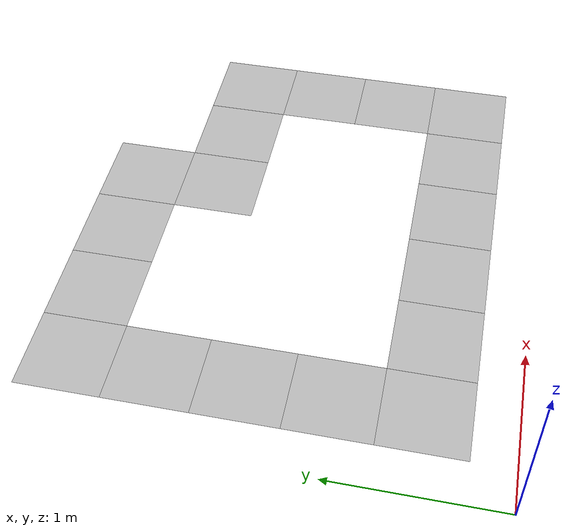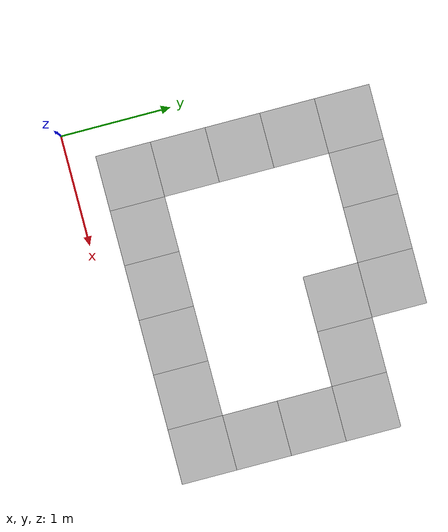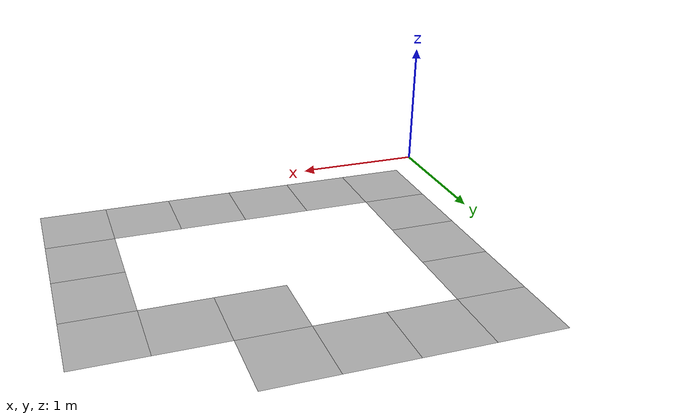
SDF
<sdf version="1.7">
 <world name="default">
  <gravity>0 0 -9.8</gravity>
  <magnetic_field>6e-06 2.3e-05 -4.2e-05</magnetic_field>
  <atmosphere type="adiabatic"/>
  <physics type="ode">
   <max_step_size>0.01</max_step_size>
   <real_time_factor>1</real_time_factor>
   <real_time_update_rate>100</real_time_update_rate>
  </physics>
  <scene>
   <ambient>1 1 1 1</ambient>
   <background>0.53 0.81 0.92 1</background>
   <shadows>0</shadows>
   <origin_visual>false</origin_visual>
  </scene>
  <spherical_coordinates>
   <surface_model>EARTH_WGS84</surface_model>
   <latitude_deg>0</latitude_deg>
   <longitude_deg>0</longitude_deg>
   <elevation>0</elevation>
   <heading_deg>0</heading_deg>
  </spherical_coordinates>
  <model name="unit_box_tile_1_1">
   <model name="model_tile_1_1">
    <static>1</static>
    <pose>0.5 0.5 0.01 1.5707963267948966 -0  0.0</pose>
    <link name="link_tile_1_1">
     <collision name="collision_tile_1_1">
      <surface>
       <bounce><restitution_coefficient>0.0</restitution_coefficient><threshold>1000000.0</threshold></bounce>
       <friction><ode><mu>1</mu><mu2>1</mu2></ode></friction>
      </surface>
      <geometry>
       <mesh><scale>0.5 0.5 0.5</scale><uri>model://circle_corner/meshes/circle_corner.obj</uri></mesh>
      </geometry>
     </collision>
     <visual name="visual_tile_1_1">
      <geometry>
       <mesh>
        <pose>0.5 0.5 0.01 1.5707963267948966 -0  0.0</pose>
        <scale>0.5 0.5 0.5</scale>
        <uri>model://circle_corner/meshes/circle_corner.obj</uri>
       </mesh>
      </geometry>
     </visual>
    </link>
   </model>
  </model>
  <model name="unit_box_tile_2_1">
   <model name="model_tile_2_1">
    <static>1</static>
    <pose>1.0 0.5 0.01 1.5707963267948966 -0  0.0</pose>
    <link name="link_tile_2_1">
     <collision name="collision_tile_2_1">
      <surface>
       <bounce><restitution_coefficient>0.0</restitution_coefficient><threshold>1000000.0</threshold></bounce>
       <friction><ode><mu>1</mu><mu2>1</mu2></ode></friction>
      </surface>
      <geometry>
       <mesh><scale>0.5 0.5 0.5</scale><uri>model://straight_line/meshes/straight_line.obj</uri></mesh>
      </geometry>
     </collision>
     <visual name="visual_tile_2_1">
      <geometry>
       <mesh>
        <pose>1.0 0.5 0.01 1.5707963267948966 -0  0.0</pose>
        <scale>0.5 0.5 0.5</scale>
        <uri>model://straight_line/meshes/straight_line.obj</uri>
       </mesh>
      </geometry>
     </visual>
    </link>
   </model>
  </model>
  <model name="unit_box_tile_3_1">
   <model name="model_tile_3_1">
    <static>1</static>
    <pose>1.5 0.5 0.01 1.5707963267948966 -0  0.0</pose>
    <link name="link_tile_3_1">
     <collision name="collision_tile_3_1">
      <surface>
       <bounce><restitution_coefficient>0.0</restitution_coefficient><threshold>1000000.0</threshold></bounce>
       <friction><ode><mu>1</mu><mu2>1</mu2></ode></friction>
      </surface>
      <geometry>
       <mesh><scale>0.5 0.5 0.5</scale><uri>model://straight_line/meshes/straight_line.obj</uri></mesh>
      </geometry>
     </collision>
     <visual name="visual_tile_3_1">
      <geometry>
       <mesh>
        <pose>1.5 0.5 0.01 1.5707963267948966 -0  0.0</pose>
        <scale>0.5 0.5 0.5</scale>
        <uri>model://straight_line/meshes/straight_line.obj</uri>
       </mesh>
      </geometry>
     </visual>
    </link>
   </model>
  </model>
  <model name="unit_box_tile_4_1">
   <model name="model_tile_4_1">
    <static>1</static>
    <pose>2.0 0.5 0.01 1.5707963267948966 -0  0.0</pose>
    <link name="link_tile_4_1">
     <collision name="collision_tile_4_1">
      <surface>
       <bounce><restitution_coefficient>0.0</restitution_coefficient><threshold>1000000.0</threshold></bounce>
       <friction><ode><mu>1</mu><mu2>1</mu2></ode></friction>
      </surface>
      <geometry>
       <mesh><scale>0.5 0.5 0.5</scale><uri>model://straight_line/meshes/straight_line.obj</uri></mesh>
      </geometry>
     </collision>
     <visual name="visual_tile_4_1">
      <geometry>
       <mesh>
        <pose>2.0 0.5 0.01 1.5707963267948966 -0  0.0</pose>
        <scale>0.5 0.5 0.5</scale>
        <uri>model://straight_line/meshes/straight_line.obj</uri>
       </mesh>
      </geometry>
     </visual>
    </link>
   </model>
  </model>
  <model name="unit_box_tile_5_1">
   <model name="model_tile_5_1">
    <static>1</static>
    <pose>2.5 0.5 0.01 1.5707963267948966 -0  0.0</pose>
    <link name="link_tile_5_1">
     <collision name="collision_tile_5_1">
      <surface>
       <bounce><restitution_coefficient>0.0</restitution_coefficient><threshold>1000000.0</threshold></bounce>
       <friction><ode><mu>1</mu><mu2>1</mu2></ode></friction>
      </surface>
      <geometry>
       <mesh><scale>0.5 0.5 0.5</scale><uri>model://straight_line/meshes/straight_line.obj</uri></mesh>
      </geometry>
     </collision>
     <visual name="visual_tile_5_1">
      <geometry>
       <mesh>
        <pose>2.5 0.5 0.01 1.5707963267948966 -0  0.0</pose>
        <scale>0.5 0.5 0.5</scale>
        <uri>model://straight_line/meshes/straight_line.obj</uri>
       </mesh>
      </geometry>
     </visual>
    </link>
   </model>
  </model>
  <model name="unit_box_tile_6_1">
   <model name="model_tile_6_1">
    <static>1</static>
    <pose>3.0 0.5 0.01 1.5707963267948966 -0  1.5707963267948966</pose>
    <link name="link_tile_6_1">
     <collision name="collision_tile_6_1">
      <surface>
       <bounce><restitution_coefficient>0.0</restitution_coefficient><threshold>1000000.0</threshold></bounce>
       <friction><ode><mu>1</mu><mu2>1</mu2></ode></friction>
      </surface>
      <geometry>
       <mesh><scale>0.5 0.5 0.5</scale><uri>model://circle_corner/meshes/circle_corner.obj</uri></mesh>
      </geometry>
     </collision>
     <visual name="visual_tile_6_1">
      <geometry>
       <mesh>
        <pose>3.0 0.5 0.01 1.5707963267948966 -0  1.5707963267948966</pose>
        <scale>0.5 0.5 0.5</scale>
        <uri>model://circle_corner/meshes/circle_corner.obj</uri>
       </mesh>
      </geometry>
     </visual>
    </link>
   </model>
  </model>
  <model name="unit_box_tile_1_2">
   <model name="model_tile_1_2">
    <static>1</static>
    <pose>0.5 1.0 0.01 1.5707963267948966 -0  4.71238898038469</pose>
    <link name="link_tile_1_2">
     <collision name="collision_tile_1_2">
      <surface>
       <bounce><restitution_coefficient>0.0</restitution_coefficient><threshold>1000000.0</threshold></bounce>
       <friction><ode><mu>1</mu><mu2>1</mu2></ode></friction>
      </surface>
      <geometry>
       <mesh><scale>0.5 0.5 0.5</scale><uri>model://straight_line/meshes/straight_line.obj</uri></mesh>
      </geometry>
     </collision>
     <visual name="visual_tile_1_2">
      <geometry>
       <mesh>
        <pose>0.5 1.0 0.01 1.5707963267948966 -0  4.71238898038469</pose>
        <scale>0.5 0.5 0.5</scale>
        <uri>model://straight_line/meshes/straight_line.obj</uri>
       </mesh>
      </geometry>
     </visual>
    </link>
   </model>
  </model>
  <model name="unit_box_tile_6_2">
   <model name="model_tile_6_2">
    <static>1</static>
    <pose>3.0 1.0 0.01 1.5707963267948966 -0  1.5707963267948966</pose>
    <link name="link_tile_6_2">
     <collision name="collision_tile_6_2">
      <surface>
       <bounce><restitution_coefficient>0.0</restitution_coefficient><threshold>1000000.0</threshold></bounce>
       <friction><ode><mu>1</mu><mu2>1</mu2></ode></friction>
      </surface>
      <geometry>
       <mesh><scale>0.5 0.5 0.5</scale><uri>model://straight_line/meshes/straight_line.obj</uri></mesh>
      </geometry>
     </collision>
     <visual name="visual_tile_6_2">
      <geometry>
       <mesh>
        <pose>3.0 1.0 0.01 1.5707963267948966 -0  1.5707963267948966</pose>
        <scale>0.5 0.5 0.5</scale>
        <uri>model://straight_line/meshes/straight_line.obj</uri>
       </mesh>
      </geometry>
     </visual>
    </link>
   </model>
  </model>
  <model name="unit_box_tile_1_3">
   <model name="model_tile_1_3">
    <static>1</static>
    <pose>0.5 1.5 0.01 1.5707963267948966 -0  4.71238898038469</pose>
    <link name="link_tile_1_3">
     <collision name="collision_tile_1_3">
      <surface>
       <bounce><restitution_coefficient>0.0</restitution_coefficient><threshold>1000000.0</threshold></bounce>
       <friction><ode><mu>1</mu><mu2>1</mu2></ode></friction>
      </surface>
      <geometry>
       <mesh><scale>0.5 0.5 0.5</scale><uri>model://straight_line/meshes/straight_line.obj</uri></mesh>
      </geometry>
     </collision>
     <visual name="visual_tile_1_3">
      <geometry>
       <mesh>
        <pose>0.5 1.5 0.01 1.5707963267948966 -0  4.71238898038469</pose>
        <scale>0.5 0.5 0.5</scale>
        <uri>model://straight_line/meshes/straight_line.obj</uri>
       </mesh>
      </geometry>
     </visual>
    </link>
   </model>
  </model>
  <model name="unit_box_tile_6_3">
   <model name="model_tile_6_3">
    <static>1</static>
    <pose>3.0 1.5 0.01 1.5707963267948966 -0  1.5707963267948966</pose>
    <link name="link_tile_6_3">
     <collision name="collision_tile_6_3">
      <surface>
       <bounce><restitution_coefficient>0.0</restitution_coefficient><threshold>1000000.0</threshold></bounce>
       <friction><ode><mu>1</mu><mu2>1</mu2></ode></friction>
      </surface>
      <geometry>
       <mesh><scale>0.5 0.5 0.5</scale><uri>model://straight_line/meshes/straight_line.obj</uri></mesh>
      </geometry>
     </collision>
     <visual name="visual_tile_6_3">
      <geometry>
       <mesh>
        <pose>3.0 1.5 0.01 1.5707963267948966 -0  1.5707963267948966</pose>
        <scale>0.5 0.5 0.5</scale>
        <uri>model://straight_line/meshes/straight_line.obj</uri>
       </mesh>
      </geometry>
     </visual>
    </link>
   </model>
  </model>
  <model name="unit_box_tile_1_4">
   <model name="model_tile_1_4">
    <static>1</static>
    <pose>0.5 2.0 0.01 1.5707963267948966 -0  4.71238898038469</pose>
    <link name="link_tile_1_4">
     <collision name="collision_tile_1_4">
      <surface>
       <bounce><restitution_coefficient>0.0</restitution_coefficient><threshold>1000000.0</threshold></bounce>
       <friction><ode><mu>1</mu><mu2>1</mu2></ode></friction>
      </surface>
      <geometry>
       <mesh><scale>0.5 0.5 0.5</scale><uri>model://straight_line/meshes/straight_line.obj</uri></mesh>
      </geometry>
     </collision>
     <visual name="visual_tile_1_4">
      <geometry>
       <mesh>
        <pose>0.5 2.0 0.01 1.5707963267948966 -0  4.71238898038469</pose>
        <scale>0.5 0.5 0.5</scale>
        <uri>model://straight_line/meshes/straight_line.obj</uri>
       </mesh>
      </geometry>
     </visual>
    </link>
   </model>
  </model>
  <model name="unit_box_tile_4_4">
   <model name="model_tile_4_4">
    <static>1</static>
    <pose>2.0 2.0 0.01 1.5707963267948966 -0  3.141592653589793</pose>
    <link name="link_tile_4_4">
     <collision name="collision_tile_4_4">
      <surface>
       <bounce><restitution_coefficient>0.0</restitution_coefficient><threshold>1000000.0</threshold></bounce>
       <friction><ode><mu>1</mu><mu2>1</mu2></ode></friction>
      </surface>
      <geometry>
       <mesh><scale>0.5 0.5 0.5</scale><uri>model://circle_corner/meshes/circle_corner.obj</uri></mesh>
      </geometry>
     </collision>
     <visual name="visual_tile_4_4">
      <geometry>
       <mesh>
        <pose>2.0 2.0 0.01 1.5707963267948966 -0  3.141592653589793</pose>
        <scale>0.5 0.5 0.5</scale>
        <uri>model://circle_corner/meshes/circle_corner.obj</uri>
       </mesh>
      </geometry>
     </visual>
    </link>
   </model>
  </model>
  <model name="unit_box_tile_5_4">
   <model name="model_tile_5_4">
    <static>1</static>
    <pose>2.5 2.0 0.01 1.5707963267948966 -0  3.141592653589793</pose>
    <link name="link_tile_5_4">
     <collision name="collision_tile_5_4">
      <surface>
       <bounce><restitution_coefficient>0.0</restitution_coefficient><threshold>1000000.0</threshold></bounce>
       <friction><ode><mu>1</mu><mu2>1</mu2></ode></friction>
      </surface>
      <geometry>
       <mesh><scale>0.5 0.5 0.5</scale><uri>model://straight_line/meshes/straight_line.obj</uri></mesh>
      </geometry>
     </collision>
     <visual name="visual_tile_5_4">
      <geometry>
       <mesh>
        <pose>2.5 2.0 0.01 1.5707963267948966 -0  3.141592653589793</pose>
        <scale>0.5 0.5 0.5</scale>
        <uri>model://straight_line/meshes/straight_line.obj</uri>
       </mesh>
      </geometry>
     </visual>
    </link>
   </model>
  </model>
  <model name="unit_box_tile_6_4">
   <model name="model_tile_6_4">
    <static>1</static>
    <pose>3.0 2.0 0.01 1.5707963267948966 -0  3.141592653589793</pose>
    <link name="link_tile_6_4">
     <collision name="collision_tile_6_4">
      <surface>
       <bounce><restitution_coefficient>0.0</restitution_coefficient><threshold>1000000.0</threshold></bounce>
       <friction><ode><mu>1</mu><mu2>1</mu2></ode></friction>
      </surface>
      <geometry>
       <mesh><scale>0.5 0.5 0.5</scale><uri>model://circle_corner/meshes/circle_corner.obj</uri></mesh>
      </geometry>
     </collision>
     <visual name="visual_tile_6_4">
      <geometry>
       <mesh>
        <pose>3.0 2.0 0.01 1.5707963267948966 -0  3.141592653589793</pose>
        <scale>0.5 0.5 0.5</scale>
        <uri>model://circle_corner/meshes/circle_corner.obj</uri>
       </mesh>
      </geometry>
     </visual>
    </link>
   </model>
  </model>
  <model name="unit_box_tile_1_5">
   <model name="model_tile_1_5">
    <static>1</static>
    <pose>0.5 2.5 0.01 1.5707963267948966 -0  4.71238898038469</pose>
    <link name="link_tile_1_5">
     <collision name="collision_tile_1_5">
      <surface>
       <bounce><restitution_coefficient>0.0</restitution_coefficient><threshold>1000000.0</threshold></bounce>
       <friction><ode><mu>1</mu><mu2>1</mu2></ode></friction>
      </surface>
      <geometry>
       <mesh><scale>0.5 0.5 0.5</scale><uri>model://circle_corner/meshes/circle_corner.obj</uri></mesh>
      </geometry>
     </collision>
     <visual name="visual_tile_1_5">
      <geometry>
       <mesh>
        <pose>0.5 2.5 0.01 1.5707963267948966 -0  4.71238898038469</pose>
        <scale>0.5 0.5 0.5</scale>
        <uri>model://circle_corner/meshes/circle_corner.obj</uri>
       </mesh>
      </geometry>
     </visual>
    </link>
   </model>
  </model>
  <model name="unit_box_tile_2_5">
   <model name="model_tile_2_5">
    <static>1</static>
    <pose>1.0 2.5 0.01 1.5707963267948966 -0  3.141592653589793</pose>
    <link name="link_tile_2_5">
     <collision name="collision_tile_2_5">
      <surface>
       <bounce><restitution_coefficient>0.0</restitution_coefficient><threshold>1000000.0</threshold></bounce>
       <friction><ode><mu>1</mu><mu2>1</mu2></ode></friction>
      </surface>
      <geometry>
       <mesh><scale>0.5 0.5 0.5</scale><uri>model://black_tile/meshes/black_tile.obj</uri></mesh>
      </geometry>
     </collision>
     <visual name="visual_tile_2_5">
      <geometry>
       <mesh>
        <pose>1.0 2.5 0.01 1.5707963267948966 -0  3.141592653589793</pose>
        <scale>0.5 0.5 0.5</scale>
        <uri>model://black_tile/meshes/black_tile.obj</uri>
       </mesh>
      </geometry>
     </visual>
    </link>
   </model>
  </model>
  <model name="unit_box_tile_3_5">
   <model name="model_tile_3_5">
    <static>1</static>
    <pose>1.5 2.5 0.01 1.5707963267948966 -0  3.141592653589793</pose>
    <link name="link_tile_3_5">
     <collision name="collision_tile_3_5">
      <surface>
       <bounce><restitution_coefficient>0.0</restitution_coefficient><threshold>1000000.0</threshold></bounce>
       <friction><ode><mu>1</mu><mu2>1</mu2></ode></friction>
      </surface>
      <geometry>
       <mesh><scale>0.5 0.5 0.5</scale><uri>model://straight_line/meshes/straight_line.obj</uri></mesh>
      </geometry>
     </collision>
     <visual name="visual_tile_3_5">
      <geometry>
       <mesh>
        <pose>1.5 2.5 0.01 1.5707963267948966 -0  3.141592653589793</pose>
        <scale>0.5 0.5 0.5</scale>
        <uri>model://straight_line/meshes/straight_line.obj</uri>
       </mesh>
      </geometry>
     </visual>
    </link>
   </model>
  </model>
  <model name="unit_box_tile_4_5">
   <model name="model_tile_4_5">
    <static>1</static>
    <pose>2.0 2.5 0.01 1.5707963267948966 -0  3.141592653589793</pose>
    <link name="link_tile_4_5">
     <collision name="collision_tile_4_5">
      <surface>
       <bounce><restitution_coefficient>0.0</restitution_coefficient><threshold>1000000.0</threshold></bounce>
       <friction><ode><mu>1</mu><mu2>1</mu2></ode></friction>
      </surface>
      <geometry>
       <mesh><scale>0.5 0.5 0.5</scale><uri>model://circle_corner/meshes/circle_corner.obj</uri></mesh>
      </geometry>
     </collision>
     <visual name="visual_tile_4_5">
      <geometry>
       <mesh>
        <pose>2.0 2.5 0.01 1.5707963267948966 -0  3.141592653589793</pose>
        <scale>0.5 0.5 0.5</scale>
        <uri>model://circle_corner/meshes/circle_corner.obj</uri>
       </mesh>
      </geometry>
     </visual>
    </link>
   </model>
  </model>
  <model name="top_down_cam">
   <static>true</static>
   <link name="top_down_link">
    <static>1</static>
    <sensor name="top_down_camera_sensor" type="camera">
     <always_on>true</always_on>
     <visualize>false</visualize>
     <update_rate>10</update_rate>
     <topic>top_down_camera/image_raw</topic>
     <ros>
      <imageTopicName>top_down_camera/image_raw</imageTopicName>
      <cameraInfoTopicName>top_down_camera/cam_info</cameraInfoTopicName>
     </ros>
     <gz_frame_id>top_down_camera_rgb_frame</gz_frame_id>
     <camera name="top_down_camera">
      <camera_info_topic>camera/camera_info</camera_info_topic>
      <image><width>640</width><height>640</height><format>R8G8B8</format></image>
      <clip><near>0.02</near><far>6</far></clip>
     </camera>
     <plugin name="camera_controller_top_down" filename="libgazebo_ros_camera.so">
      <camera_name>camera_top_down</camera_name>
      <frame_name>base_top_down</frame_name>
      <frameName>base_top_down</frameName>
      <cameraName>camera_top_down</cameraName>
     </plugin>
    </sensor>
    <static>1</static>
    <pose>1.688 1.36 4 0 1.57 0</pose>
    <link name="top_down_link">
     <static>1</static>
     <collision name="collision_tile_7_4">
      <geometry><mesh><scale>0.5 0.5 0.5</scale><uri>model://floor/meshes/floor.obj</uri></mesh></geometry>
     </collision>
     <visual name="visual_tile_7_4">
      <geometry>
       <mesh>
        <pose>1.688 1.36 4 0 1.57 0</pose>
        <scale>0.5 0.5 0.5</scale>
        <uri>model://floor/meshes/floor.obj</uri>
       </mesh>
      </geometry>
     </visual>
    </link>
   </link>
  </model>
  <light name="directionallight" type="directional">
   <pose>3.14919 1.1553 2 0 -0 0</pose>
   <cast_shadows>false</cast_shadows>
   <intensity>1</intensity>
   <direction>0 0 -1</direction>
   <diffuse>0.8 0.8 0.8 1</diffuse>
   <specular>0.2 0.2 0.2 1</specular>
   <attenuation>
    <range>1000</range>
    <linear>0.01</linear>
    <constant>0.90000000000000002</constant>
    <quadratic>0.001</quadratic>
   </attenuation>
   <spot><inner_angle>0</inner_angle><outer_angle>0</outer_angle><falloff>0</falloff></spot>
  </light>
 </world>
</sdf>
